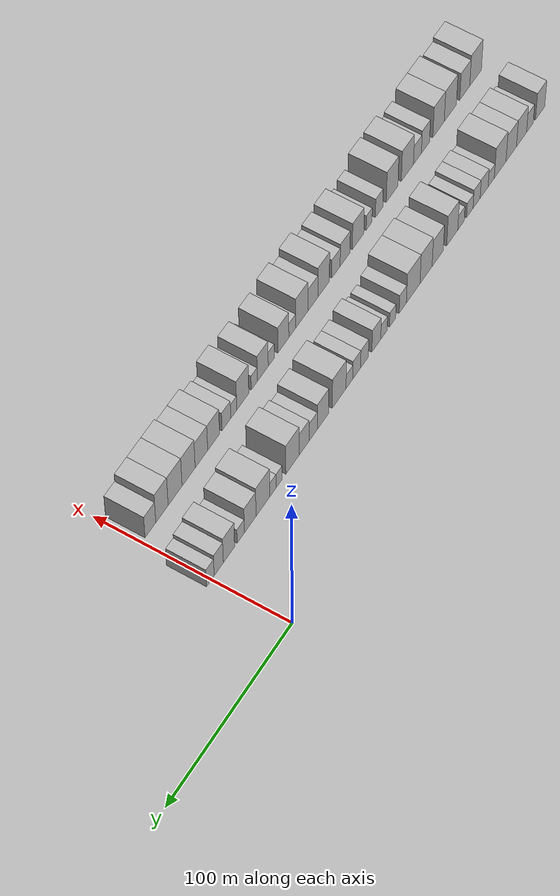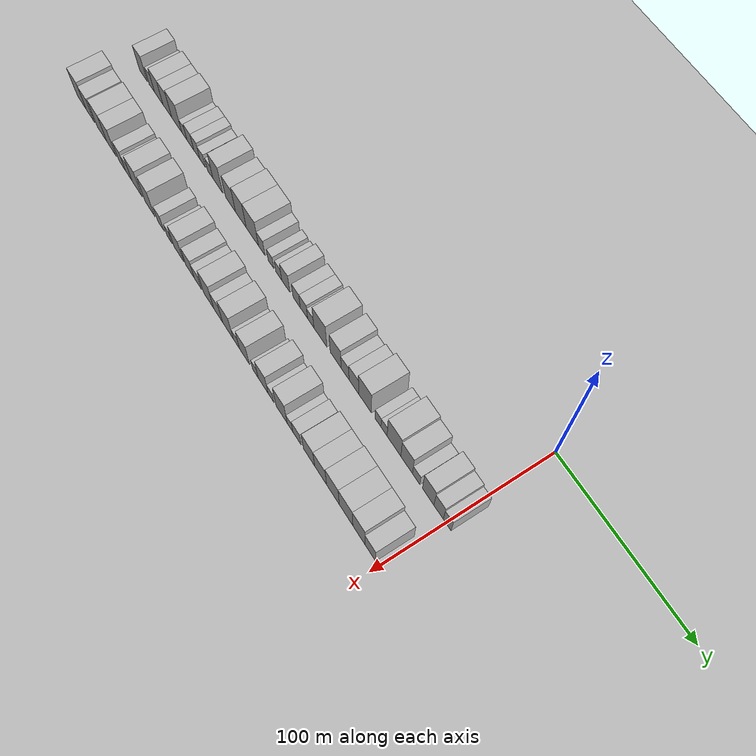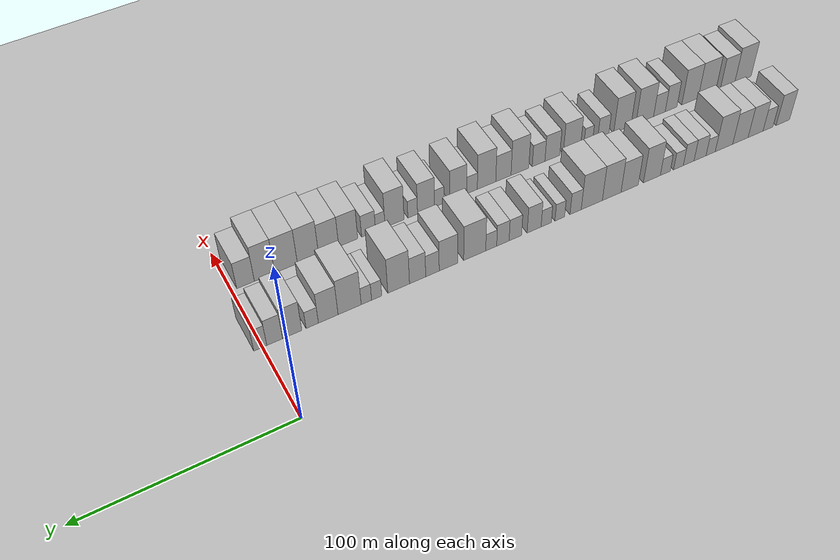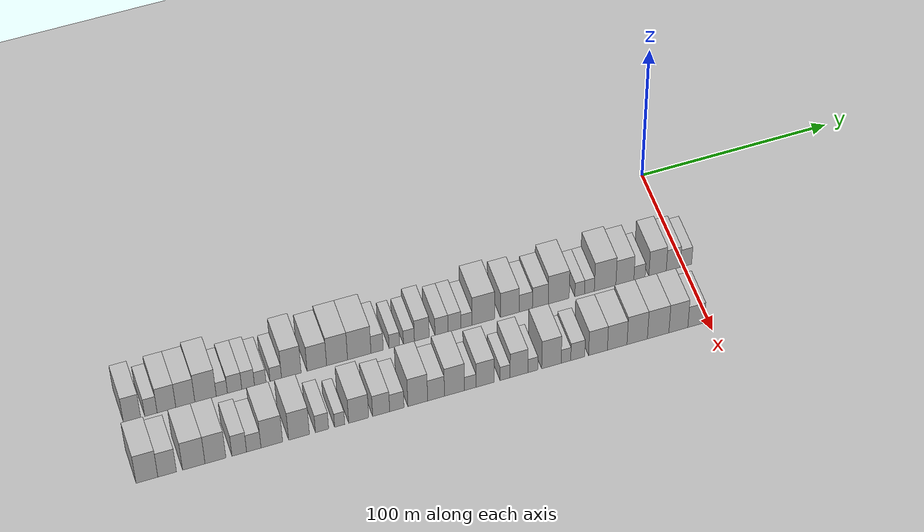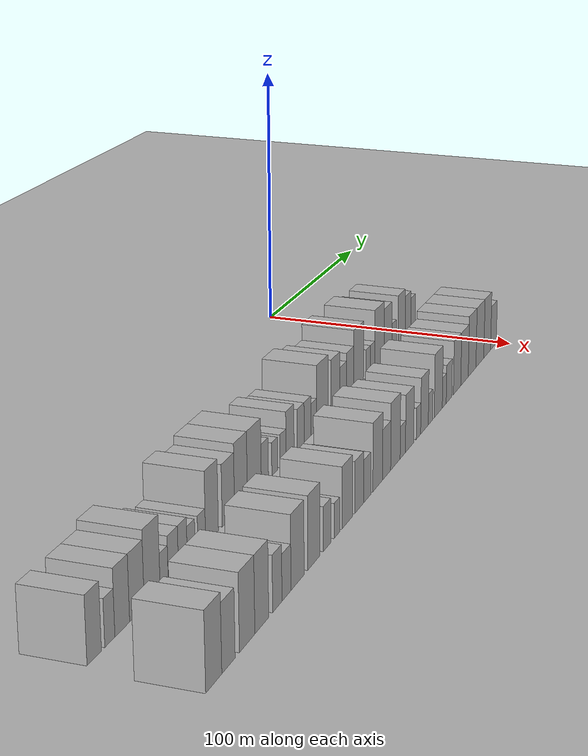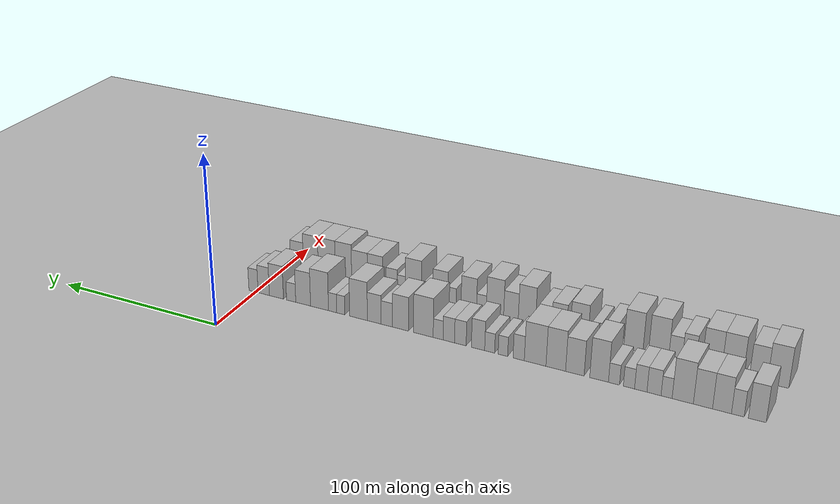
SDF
<sdf version="1.6">
 <world name="default">
  <include><name>ground_plane_1</name><uri>model://HANNAS_ground_plane</uri></include>
  <include>
   <name>ground_plane_2</name>
   <uri>model://HANNAS_ground_plane</uri>
   <pose>100 0 0  0 0 0</pose>
  </include>
  <model name="building_1">
   <static>1</static>
   <pose>50.0000 -282.7054 0 0.000000 0.000000 0.000000</pose>
   <link name="link">
    <pose>0 0 10.50 0 0 0</pose>
    <collision name="collision"><geometry><box><size>20.0000 8.5893 21.0000</size></box></geometry></collision>
    <visual name="visual">
     <cast_shadows>0</cast_shadows>
     <geometry><box><size>20.0000 8.5893 21.0000</size></box></geometry>
     <material>
      <script>
       <uri>model://HANNAS_wall/materials/scripts</uri>
       <uri>model://HANNAS_wall/materials/textures</uri>
       <name>vrc/HANNAS_wall</name>
      </script>
     </material>
    </visual>
   </link>
  </model>
  <model name="building_2">
   <static>1</static>
   <pose>50.0000 -273.3137 0 0.000000 0.000000 0.000000</pose>
   <link name="link">
    <pose>0 0 7.50 0 0 0</pose>
    <collision name="collision"><geometry><box><size>20.0000 6.1940 15.0000</size></box></geometry></collision>
    <visual name="visual">
     <cast_shadows>0</cast_shadows>
     <geometry><box><size>20.0000 6.1940 15.0000</size></box></geometry>
     <material>
      <script>
       <uri>model://HANNAS_wall/materials/scripts</uri>
       <uri>model://HANNAS_wall/materials/textures</uri>
       <name>vrc/HANNAS_wall</name>
      </script>
     </material>
    </visual>
   </link>
  </model>
  <model name="building_3">
   <static>1</static>
   <pose>50.0000 -265.5735 0 0.000000 0.000000 0.000000</pose>
   <link name="link">
    <pose>0 0 10.50 0 0 0</pose>
    <collision name="collision"><geometry><box><size>20.0000 9.2864 21.0000</size></box></geometry></collision>
    <visual name="visual">
     <cast_shadows>0</cast_shadows>
     <geometry><box><size>20.0000 9.2864 21.0000</size></box></geometry>
     <material>
      <script>
       <uri>model://HANNAS_wall/materials/scripts</uri>
       <uri>model://HANNAS_wall/materials/textures</uri>
       <name>vrc/HANNAS_wall</name>
      </script>
     </material>
    </visual>
   </link>
  </model>
  <model name="building_4">
   <static>1</static>
   <pose>50.0000 -256.1749 0 0.000000 0.000000 0.000000</pose>
   <link name="link">
    <pose>0 0 10.50 0 0 0</pose>
    <collision name="collision"><geometry><box><size>20.0000 9.5108 21.0000</size></box></geometry></collision>
    <visual name="visual">
     <cast_shadows>0</cast_shadows>
     <geometry><box><size>20.0000 9.5108 21.0000</size></box></geometry>
     <material>
      <script>
       <uri>model://HANNAS_wall/materials/scripts</uri>
       <uri>model://HANNAS_wall/materials/textures</uri>
       <name>vrc/HANNAS_wall</name>
      </script>
     </material>
    </visual>
   </link>
  </model>
  <model name="building_5">
   <static>1</static>
   <pose>50.0000 -246.0718 0 0.000000 0.000000 0.000000</pose>
   <link name="link">
    <pose>0 0 12.00 0 0 0</pose>
    <collision name="collision"><geometry><box><size>20.0000 10.6954 24.0000</size></box></geometry></collision>
    <visual name="visual">
     <cast_shadows>0</cast_shadows>
     <geometry><box><size>20.0000 10.6954 24.0000</size></box></geometry>
     <material>
      <script>
       <uri>model://HANNAS_wall/materials/scripts</uri>
       <uri>model://HANNAS_wall/materials/textures</uri>
       <name>vrc/HANNAS_wall</name>
      </script>
     </material>
    </visual>
   </link>
  </model>
  <model name="building_6">
   <static>1</static>
   <pose>50.0000 -237.9298 0 0.000000 0.000000 0.000000</pose>
   <link name="link">
    <pose>0 0 6.00 0 0 0</pose>
    <collision name="collision"><geometry><box><size>20.0000 5.5887 12.0000</size></box></geometry></collision>
    <visual name="visual">
     <cast_shadows>0</cast_shadows>
     <geometry><box><size>20.0000 5.5887 12.0000</size></box></geometry>
     <material>
      <script>
       <uri>model://HANNAS_wall/materials/scripts</uri>
       <uri>model://HANNAS_wall/materials/textures</uri>
       <name>vrc/HANNAS_wall</name>
      </script>
     </material>
    </visual>
   </link>
  </model>
  <model name="building_7">
   <static>1</static>
   <pose>50.0000 -231.5289 0 0.000000 0.000000 0.000000</pose>
   <link name="link">
    <pose>0 0 7.50 0 0 0</pose>
    <collision name="collision"><geometry><box><size>20.0000 7.2132 15.0000</size></box></geometry></collision>
    <visual name="visual">
     <cast_shadows>0</cast_shadows>
     <geometry><box><size>20.0000 7.2132 15.0000</size></box></geometry>
     <material>
      <script>
       <uri>model://HANNAS_wall/materials/scripts</uri>
       <uri>model://HANNAS_wall/materials/textures</uri>
       <name>vrc/HANNAS_wall</name>
      </script>
     </material>
    </visual>
   </link>
  </model>
  <model name="building_8">
   <static>1</static>
   <pose>50.0000 -224.7328 0 0.000000 0.000000 0.000000</pose>
   <link name="link">
    <pose>0 0 7.50 0 0 0</pose>
    <collision name="collision"><geometry><box><size>20.0000 6.3789 15.0000</size></box></geometry></collision>
    <visual name="visual">
     <cast_shadows>0</cast_shadows>
     <geometry><box><size>20.0000 6.3789 15.0000</size></box></geometry>
     <material>
      <script>
       <uri>model://HANNAS_wall/materials/scripts</uri>
       <uri>model://HANNAS_wall/materials/textures</uri>
       <name>vrc/HANNAS_wall</name>
      </script>
     </material>
    </visual>
   </link>
  </model>
  <model name="building_9">
   <static>1</static>
   <pose>50.0000 -218.6347 0 0.000000 0.000000 0.000000</pose>
   <link name="link">
    <pose>0 0 6.00 0 0 0</pose>
    <collision name="collision"><geometry><box><size>20.0000 5.8174 12.0000</size></box></geometry></collision>
    <visual name="visual">
     <cast_shadows>0</cast_shadows>
     <geometry><box><size>20.0000 5.8174 12.0000</size></box></geometry>
     <material>
      <script>
       <uri>model://HANNAS_wall/materials/scripts</uri>
       <uri>model://HANNAS_wall/materials/textures</uri>
       <name>vrc/HANNAS_wall</name>
      </script>
     </material>
    </visual>
   </link>
  </model>
  <model name="building_10">
   <static>1</static>
   <pose>50.0000 -210.8293 0 0.000000 0.000000 0.000000</pose>
   <link name="link">
    <pose>0 0 6.00 0 0 0</pose>
    <collision name="collision"><geometry><box><size>20.0000 5.7934 12.0000</size></box></geometry></collision>
    <visual name="visual">
     <cast_shadows>0</cast_shadows>
     <geometry><box><size>20.0000 5.7934 12.0000</size></box></geometry>
     <material>
      <script>
       <uri>model://HANNAS_wall/materials/scripts</uri>
       <uri>model://HANNAS_wall/materials/textures</uri>
       <name>vrc/HANNAS_wall</name>
      </script>
     </material>
    </visual>
   </link>
  </model>
  <model name="building_11">
   <static>1</static>
   <pose>50.0000 -202.9933 0 0.000000 0.000000 0.000000</pose>
   <link name="link">
    <pose>0 0 12.00 0 0 0</pose>
    <collision name="collision"><geometry><box><size>20.0000 9.8786 24.0000</size></box></geometry></collision>
    <visual name="visual">
     <cast_shadows>0</cast_shadows>
     <geometry><box><size>20.0000 9.8786 24.0000</size></box></geometry>
     <material>
      <script>
       <uri>model://HANNAS_wall/materials/scripts</uri>
       <uri>model://HANNAS_wall/materials/textures</uri>
       <name>vrc/HANNAS_wall</name>
      </script>
     </material>
    </visual>
   </link>
  </model>
  <model name="building_12">
   <static>1</static>
   <pose>50.0000 -190.0922 0 0.000000 0.000000 0.000000</pose>
   <link name="link">
    <pose>0 0 10.50 0 0 0</pose>
    <collision name="collision"><geometry><box><size>20.0000 9.9234 21.0000</size></box></geometry></collision>
    <visual name="visual">
     <cast_shadows>0</cast_shadows>
     <geometry><box><size>20.0000 9.9234 21.0000</size></box></geometry>
     <material>
      <script>
       <uri>model://HANNAS_wall/materials/scripts</uri>
       <uri>model://HANNAS_wall/materials/textures</uri>
       <name>vrc/HANNAS_wall</name>
      </script>
     </material>
    </visual>
   </link>
  </model>
  <model name="building_13">
   <static>1</static>
   <pose>50.0000 -179.8102 0 0.000000 0.000000 0.000000</pose>
   <link name="link">
    <pose>0 0 12.00 0 0 0</pose>
    <collision name="collision"><geometry><box><size>20.0000 10.6407 24.0000</size></box></geometry></collision>
    <visual name="visual">
     <cast_shadows>0</cast_shadows>
     <geometry><box><size>20.0000 10.6407 24.0000</size></box></geometry>
     <material>
      <script>
       <uri>model://HANNAS_wall/materials/scripts</uri>
       <uri>model://HANNAS_wall/materials/textures</uri>
       <name>vrc/HANNAS_wall</name>
      </script>
     </material>
    </visual>
   </link>
  </model>
  <model name="building_14">
   <static>1</static>
   <pose>50.0000 -168.5287 0 0.000000 0.000000 0.000000</pose>
   <link name="link">
    <pose>0 0 12.00 0 0 0</pose>
    <collision name="collision"><geometry><box><size>20.0000 11.9223 24.0000</size></box></geometry></collision>
    <visual name="visual">
     <cast_shadows>0</cast_shadows>
     <geometry><box><size>20.0000 11.9223 24.0000</size></box></geometry>
     <material>
      <script>
       <uri>model://HANNAS_wall/materials/scripts</uri>
       <uri>model://HANNAS_wall/materials/textures</uri>
       <name>vrc/HANNAS_wall</name>
      </script>
     </material>
    </visual>
   </link>
  </model>
  <model name="building_15">
   <static>1</static>
   <pose>50.0000 -159.4381 0 0.000000 0.000000 0.000000</pose>
   <link name="link">
    <pose>0 0 7.50 0 0 0</pose>
    <collision name="collision"><geometry><box><size>20.0000 6.2589 15.0000</size></box></geometry></collision>
    <visual name="visual">
     <cast_shadows>0</cast_shadows>
     <geometry><box><size>20.0000 6.2589 15.0000</size></box></geometry>
     <material>
      <script>
       <uri>model://HANNAS_wall/materials/scripts</uri>
       <uri>model://HANNAS_wall/materials/textures</uri>
       <name>vrc/HANNAS_wall</name>
      </script>
     </material>
    </visual>
   </link>
  </model>
  <model name="building_16">
   <static>1</static>
   <pose>50.0000 -150.6454 0 0.000000 0.000000 0.000000</pose>
   <link name="link">
    <pose>0 0 6.00 0 0 0</pose>
    <collision name="collision"><geometry><box><size>20.0000 5.3266 12.0000</size></box></geometry></collision>
    <visual name="visual">
     <cast_shadows>0</cast_shadows>
     <geometry><box><size>20.0000 5.3266 12.0000</size></box></geometry>
     <material>
      <script>
       <uri>model://HANNAS_wall/materials/scripts</uri>
       <uri>model://HANNAS_wall/materials/textures</uri>
       <name>vrc/HANNAS_wall</name>
      </script>
     </material>
    </visual>
   </link>
  </model>
  <model name="building_17">
   <static>1</static>
   <pose>50.0000 -143.1779 0 0.000000 0.000000 0.000000</pose>
   <link name="link">
    <pose>0 0 6.00 0 0 0</pose>
    <collision name="collision"><geometry><box><size>20.0000 5.6084 12.0000</size></box></geometry></collision>
    <visual name="visual">
     <cast_shadows>0</cast_shadows>
     <geometry><box><size>20.0000 5.6084 12.0000</size></box></geometry>
     <material>
      <script>
       <uri>model://HANNAS_wall/materials/scripts</uri>
       <uri>model://HANNAS_wall/materials/textures</uri>
       <name>vrc/HANNAS_wall</name>
      </script>
     </material>
    </visual>
   </link>
  </model>
  <model name="building_18">
   <static>1</static>
   <pose>50.0000 -136.5810 0 0.000000 0.000000 0.000000</pose>
   <link name="link">
    <pose>0 0 9.00 0 0 0</pose>
    <collision name="collision"><geometry><box><size>20.0000 7.5854 18.0000</size></box></geometry></collision>
    <visual name="visual">
     <cast_shadows>0</cast_shadows>
     <geometry><box><size>20.0000 7.5854 18.0000</size></box></geometry>
     <material>
      <script>
       <uri>model://HANNAS_wall/materials/scripts</uri>
       <uri>model://HANNAS_wall/materials/textures</uri>
       <name>vrc/HANNAS_wall</name>
      </script>
     </material>
    </visual>
   </link>
  </model>
  <model name="building_19">
   <static>1</static>
   <pose>50.0000 -126.4418 0 0.000000 0.000000 0.000000</pose>
   <link name="link">
    <pose>0 0 7.50 0 0 0</pose>
    <collision name="collision"><geometry><box><size>20.0000 6.6930 15.0000</size></box></geometry></collision>
    <visual name="visual">
     <cast_shadows>0</cast_shadows>
     <geometry><box><size>20.0000 6.6930 15.0000</size></box></geometry>
     <material>
      <script>
       <uri>model://HANNAS_wall/materials/scripts</uri>
       <uri>model://HANNAS_wall/materials/textures</uri>
       <name>vrc/HANNAS_wall</name>
      </script>
     </material>
    </visual>
   </link>
  </model>
  <model name="building_20">
   <static>1</static>
   <pose>50.0000 -119.7794 0 0.000000 0.000000 0.000000</pose>
   <link name="link">
    <pose>0 0 7.50 0 0 0</pose>
    <collision name="collision"><geometry><box><size>20.0000 6.6319 15.0000</size></box></geometry></collision>
    <visual name="visual">
     <cast_shadows>0</cast_shadows>
     <geometry><box><size>20.0000 6.6319 15.0000</size></box></geometry>
     <material>
      <script>
       <uri>model://HANNAS_wall/materials/scripts</uri>
       <uri>model://HANNAS_wall/materials/textures</uri>
       <name>vrc/HANNAS_wall</name>
      </script>
     </material>
    </visual>
   </link>
  </model>
  <model name="building_21">
   <static>1</static>
   <pose>50.0000 -113.5627 0 0.000000 0.000000 0.000000</pose>
   <link name="link">
    <pose>0 0 6.00 0 0 0</pose>
    <collision name="collision"><geometry><box><size>20.0000 5.8016 12.0000</size></box></geometry></collision>
    <visual name="visual">
     <cast_shadows>0</cast_shadows>
     <geometry><box><size>20.0000 5.8016 12.0000</size></box></geometry>
     <material>
      <script>
       <uri>model://HANNAS_wall/materials/scripts</uri>
       <uri>model://HANNAS_wall/materials/textures</uri>
       <name>vrc/HANNAS_wall</name>
      </script>
     </material>
    </visual>
   </link>
  </model>
  <model name="building_22">
   <static>1</static>
   <pose>50.0000 -104.8681 0 0.000000 0.000000 0.000000</pose>
   <link name="link">
    <pose>0 0 12.00 0 0 0</pose>
    <collision name="collision"><geometry><box><size>20.0000 11.5875 24.0000</size></box></geometry></collision>
    <visual name="visual">
     <cast_shadows>0</cast_shadows>
     <geometry><box><size>20.0000 11.5875 24.0000</size></box></geometry>
     <material>
      <script>
       <uri>model://HANNAS_wall/materials/scripts</uri>
       <uri>model://HANNAS_wall/materials/textures</uri>
       <name>vrc/HANNAS_wall</name>
      </script>
     </material>
    </visual>
   </link>
  </model>
  <model name="building_23">
   <static>1</static>
   <pose>50.0000 -91.2402 0 0.000000 0.000000 0.000000</pose>
   <link name="link">
    <pose>0 0 10.50 0 0 0</pose>
    <collision name="collision"><geometry><box><size>20.0000 9.6684 21.0000</size></box></geometry></collision>
    <visual name="visual">
     <cast_shadows>0</cast_shadows>
     <geometry><box><size>20.0000 9.6684 21.0000</size></box></geometry>
     <material>
      <script>
       <uri>model://HANNAS_wall/materials/scripts</uri>
       <uri>model://HANNAS_wall/materials/textures</uri>
       <name>vrc/HANNAS_wall</name>
      </script>
     </material>
    </visual>
   </link>
  </model>
  <model name="building_24">
   <static>1</static>
   <pose>50.0000 -82.9417 0 0.000000 0.000000 0.000000</pose>
   <link name="link">
    <pose>0 0 7.50 0 0 0</pose>
    <collision name="collision"><geometry><box><size>20.0000 6.9285 15.0000</size></box></geometry></collision>
    <visual name="visual">
     <cast_shadows>0</cast_shadows>
     <geometry><box><size>20.0000 6.9285 15.0000</size></box></geometry>
     <material>
      <script>
       <uri>model://HANNAS_wall/materials/scripts</uri>
       <uri>model://HANNAS_wall/materials/textures</uri>
       <name>vrc/HANNAS_wall</name>
      </script>
     </material>
    </visual>
   </link>
  </model>
  <model name="building_25">
   <static>1</static>
   <pose>50.0000 -75.3658 0 0.000000 0.000000 0.000000</pose>
   <link name="link">
    <pose>0 0 9.00 0 0 0</pose>
    <collision name="collision"><geometry><box><size>20.0000 8.2234 18.0000</size></box></geometry></collision>
    <visual name="visual">
     <cast_shadows>0</cast_shadows>
     <geometry><box><size>20.0000 8.2234 18.0000</size></box></geometry>
     <material>
      <script>
       <uri>model://HANNAS_wall/materials/scripts</uri>
       <uri>model://HANNAS_wall/materials/textures</uri>
       <name>vrc/HANNAS_wall</name>
      </script>
     </material>
    </visual>
   </link>
  </model>
  <model name="building_26">
   <static>1</static>
   <pose>50.0000 -65.8035 0 0.000000 0.000000 0.000000</pose>
   <link name="link">
    <pose>0 0 12.00 0 0 0</pose>
    <collision name="collision"><geometry><box><size>20.0000 10.9014 24.0000</size></box></geometry></collision>
    <visual name="visual">
     <cast_shadows>0</cast_shadows>
     <geometry><box><size>20.0000 10.9014 24.0000</size></box></geometry>
     <material>
      <script>
       <uri>model://HANNAS_wall/materials/scripts</uri>
       <uri>model://HANNAS_wall/materials/textures</uri>
       <name>vrc/HANNAS_wall</name>
      </script>
     </material>
    </visual>
   </link>
  </model>
  <model name="building_27">
   <static>1</static>
   <pose>50.0000 -54.8230 0 0.000000 0.000000 0.000000</pose>
   <link name="link">
    <pose>0 0 6.00 0 0 0</pose>
    <collision name="collision"><geometry><box><size>20.0000 5.0596 12.0000</size></box></geometry></collision>
    <visual name="visual">
     <cast_shadows>0</cast_shadows>
     <geometry><box><size>20.0000 5.0596 12.0000</size></box></geometry>
     <material>
      <script>
       <uri>model://HANNAS_wall/materials/scripts</uri>
       <uri>model://HANNAS_wall/materials/textures</uri>
       <name>vrc/HANNAS_wall</name>
      </script>
     </material>
    </visual>
   </link>
  </model>
  <model name="building_28">
   <static>1</static>
   <pose>50.0000 -49.7295 0 0.000000 0.000000 0.000000</pose>
   <link name="link">
    <pose>0 0 6.00 0 0 0</pose>
    <collision name="collision"><geometry><box><size>20.0000 5.1273 12.0000</size></box></geometry></collision>
    <visual name="visual">
     <cast_shadows>0</cast_shadows>
     <geometry><box><size>20.0000 5.1273 12.0000</size></box></geometry>
     <material>
      <script>
       <uri>model://HANNAS_wall/materials/scripts</uri>
       <uri>model://HANNAS_wall/materials/textures</uri>
       <name>vrc/HANNAS_wall</name>
      </script>
     </material>
    </visual>
   </link>
  </model>
  <model name="building_29">
   <static>1</static>
   <pose>50.0000 -41.5138 0 0.000000 0.000000 0.000000</pose>
   <link name="link">
    <pose>0 0 12.00 0 0 0</pose>
    <collision name="collision"><geometry><box><size>20.0000 11.3039 24.0000</size></box></geometry></collision>
    <visual name="visual">
     <cast_shadows>0</cast_shadows>
     <geometry><box><size>20.0000 11.3039 24.0000</size></box></geometry>
     <material>
      <script>
       <uri>model://HANNAS_wall/materials/scripts</uri>
       <uri>model://HANNAS_wall/materials/textures</uri>
       <name>vrc/HANNAS_wall</name>
      </script>
     </material>
    </visual>
   </link>
  </model>
  <model name="building_30">
   <static>1</static>
   <pose>50.0000 -31.1243 0 0.000000 0.000000 0.000000</pose>
   <link name="link">
    <pose>0 0 10.50 0 0 0</pose>
    <collision name="collision"><geometry><box><size>20.0000 9.4751 21.0000</size></box></geometry></collision>
    <visual name="visual">
     <cast_shadows>0</cast_shadows>
     <geometry><box><size>20.0000 9.4751 21.0000</size></box></geometry>
     <material>
      <script>
       <uri>model://HANNAS_wall/materials/scripts</uri>
       <uri>model://HANNAS_wall/materials/textures</uri>
       <name>vrc/HANNAS_wall</name>
      </script>
     </material>
    </visual>
   </link>
  </model>
  <model name="building_31">
   <static>1</static>
   <pose>50.0000 -23.4259 0 0.000000 0.000000 0.000000</pose>
   <link name="link">
    <pose>0 0 6.00 0 0 0</pose>
    <collision name="collision"><geometry><box><size>20.0000 5.9219 12.0000</size></box></geometry></collision>
    <visual name="visual">
     <cast_shadows>0</cast_shadows>
     <geometry><box><size>20.0000 5.9219 12.0000</size></box></geometry>
     <material>
      <script>
       <uri>model://HANNAS_wall/materials/scripts</uri>
       <uri>model://HANNAS_wall/materials/textures</uri>
       <name>vrc/HANNAS_wall</name>
      </script>
     </material>
    </visual>
   </link>
  </model>
  <model name="building_32">
   <static>1</static>
   <pose>50.0000 -13.8963 0 0.000000 0.000000 0.000000</pose>
   <link name="link">
    <pose>0 0 10.50 0 0 0</pose>
    <collision name="collision"><geometry><box><size>20.0000 9.1371 21.0000</size></box></geometry></collision>
    <visual name="visual">
     <cast_shadows>0</cast_shadows>
     <geometry><box><size>20.0000 9.1371 21.0000</size></box></geometry>
     <material>
      <script>
       <uri>model://HANNAS_wall/materials/scripts</uri>
       <uri>model://HANNAS_wall/materials/textures</uri>
       <name>vrc/HANNAS_wall</name>
      </script>
     </material>
    </visual>
   </link>
  </model>
  <model name="building_33">
   <static>1</static>
   <pose>50.0000 -5.6347 0 0.000000 0.000000 0.000000</pose>
   <link name="link">
    <pose>0 0 9.00 0 0 0</pose>
    <collision name="collision"><geometry><box><size>20.0000 7.3862 18.0000</size></box></geometry></collision>
    <visual name="visual">
     <cast_shadows>0</cast_shadows>
     <geometry><box><size>20.0000 7.3862 18.0000</size></box></geometry>
     <material>
      <script>
       <uri>model://HANNAS_wall/materials/scripts</uri>
       <uri>model://HANNAS_wall/materials/textures</uri>
       <name>vrc/HANNAS_wall</name>
      </script>
     </material>
    </visual>
   </link>
  </model>
  <model name="building_34">
   <static>1</static>
   <pose>50.0000 1.0851 0 0.000000 0.000000 0.000000</pose>
   <link name="link">
    <pose>0 0 7.50 0 0 0</pose>
    <collision name="collision"><geometry><box><size>20.0000 6.0533 15.0000</size></box></geometry></collision>
    <visual name="visual">
     <cast_shadows>0</cast_shadows>
     <geometry><box><size>20.0000 6.0533 15.0000</size></box></geometry>
     <material>
      <script>
       <uri>model://HANNAS_wall/materials/scripts</uri>
       <uri>model://HANNAS_wall/materials/textures</uri>
       <name>vrc/HANNAS_wall</name>
      </script>
     </material>
    </visual>
   </link>
  </model>
  <model name="building_67">
   <static>1</static>
   <pose>85.0000 -284.6510 0 0.000000 0.000000 0.000000</pose>
   <link name="link">
    <pose>0 0 12.00 0 0 0</pose>
    <collision name="collision"><geometry><box><size>20.0000 10.6979 24.0000</size></box></geometry></collision>
    <visual name="visual">
     <cast_shadows>0</cast_shadows>
     <geometry><box><size>20.0000 10.6979 24.0000</size></box></geometry>
     <material>
      <script>
       <uri>model://HANNAS_wall/materials/scripts</uri>
       <uri>model://HANNAS_wall/materials/textures</uri>
       <name>vrc/HANNAS_wall</name>
      </script>
     </material>
    </visual>
   </link>
  </model>
  <model name="building_68">
   <static>1</static>
   <pose>85.0000 -274.7380 0 0.000000 0.000000 0.000000</pose>
   <link name="link">
    <pose>0 0 10.50 0 0 0</pose>
    <collision name="collision"><geometry><box><size>20.0000 9.1280 21.0000</size></box></geometry></collision>
    <visual name="visual">
     <cast_shadows>0</cast_shadows>
     <geometry><box><size>20.0000 9.1280 21.0000</size></box></geometry>
     <material>
      <script>
       <uri>model://HANNAS_wall/materials/scripts</uri>
       <uri>model://HANNAS_wall/materials/textures</uri>
       <name>vrc/HANNAS_wall</name>
      </script>
     </material>
    </visual>
   </link>
  </model>
  <model name="building_69">
   <static>1</static>
   <pose>85.0000 -261.6400 0 0.000000 0.000000 0.000000</pose>
   <link name="link">
    <pose>0 0 12.00 0 0 0</pose>
    <collision name="collision"><geometry><box><size>20.0000 11.0681 24.0000</size></box></geometry></collision>
    <visual name="visual">
     <cast_shadows>0</cast_shadows>
     <geometry><box><size>20.0000 11.0681 24.0000</size></box></geometry>
     <material>
      <script>
       <uri>model://HANNAS_wall/materials/scripts</uri>
       <uri>model://HANNAS_wall/materials/textures</uri>
       <name>vrc/HANNAS_wall</name>
      </script>
     </material>
    </visual>
   </link>
  </model>
  <model name="building_70">
   <static>1</static>
   <pose>85.0000 -250.9583 0 0.000000 0.000000 0.000000</pose>
   <link name="link">
    <pose>0 0 12.00 0 0 0</pose>
    <collision name="collision"><geometry><box><size>20.0000 10.2953 24.0000</size></box></geometry></collision>
    <visual name="visual">
     <cast_shadows>0</cast_shadows>
     <geometry><box><size>20.0000 10.2953 24.0000</size></box></geometry>
     <material>
      <script>
       <uri>model://HANNAS_wall/materials/scripts</uri>
       <uri>model://HANNAS_wall/materials/textures</uri>
       <name>vrc/HANNAS_wall</name>
      </script>
     </material>
    </visual>
   </link>
  </model>
  <model name="building_71">
   <static>1</static>
   <pose>85.0000 -239.1912 0 0.000000 0.000000 0.000000</pose>
   <link name="link">
    <pose>0 0 9.00 0 0 0</pose>
    <collision name="collision"><geometry><box><size>20.0000 7.2389 18.0000</size></box></geometry></collision>
    <visual name="visual">
     <cast_shadows>0</cast_shadows>
     <geometry><box><size>20.0000 7.2389 18.0000</size></box></geometry>
     <material>
      <script>
       <uri>model://HANNAS_wall/materials/scripts</uri>
       <uri>model://HANNAS_wall/materials/textures</uri>
       <name>vrc/HANNAS_wall</name>
      </script>
     </material>
    </visual>
   </link>
  </model>
  <model name="building_72">
   <static>1</static>
   <pose>85.0000 -231.9990 0 0.000000 0.000000 0.000000</pose>
   <link name="link">
    <pose>0 0 7.50 0 0 0</pose>
    <collision name="collision"><geometry><box><size>20.0000 7.1454 15.0000</size></box></geometry></collision>
    <visual name="visual">
     <cast_shadows>0</cast_shadows>
     <geometry><box><size>20.0000 7.1454 15.0000</size></box></geometry>
     <material>
      <script>
       <uri>model://HANNAS_wall/materials/scripts</uri>
       <uri>model://HANNAS_wall/materials/textures</uri>
       <name>vrc/HANNAS_wall</name>
      </script>
     </material>
    </visual>
   </link>
  </model>
  <model name="building_73">
   <static>1</static>
   <pose>85.0000 -223.0458 0 0.000000 0.000000 0.000000</pose>
   <link name="link">
    <pose>0 0 12.00 0 0 0</pose>
    <collision name="collision"><geometry><box><size>20.0000 10.7611 24.0000</size></box></geometry></collision>
    <visual name="visual">
     <cast_shadows>0</cast_shadows>
     <geometry><box><size>20.0000 10.7611 24.0000</size></box></geometry>
     <material>
      <script>
       <uri>model://HANNAS_wall/materials/scripts</uri>
       <uri>model://HANNAS_wall/materials/textures</uri>
       <name>vrc/HANNAS_wall</name>
      </script>
     </material>
    </visual>
   </link>
  </model>
  <model name="building_74">
   <static>1</static>
   <pose>85.0000 -209.4901 0 0.000000 0.000000 0.000000</pose>
   <link name="link">
    <pose>0 0 12.00 0 0 0</pose>
    <collision name="collision"><geometry><box><size>20.0000 10.3504 24.0000</size></box></geometry></collision>
    <visual name="visual">
     <cast_shadows>0</cast_shadows>
     <geometry><box><size>20.0000 10.3504 24.0000</size></box></geometry>
     <material>
      <script>
       <uri>model://HANNAS_wall/materials/scripts</uri>
       <uri>model://HANNAS_wall/materials/textures</uri>
       <name>vrc/HANNAS_wall</name>
      </script>
     </material>
    </visual>
   </link>
  </model>
  <model name="building_75">
   <static>1</static>
   <pose>85.0000 -198.0208 0 0.000000 0.000000 0.000000</pose>
   <link name="link">
    <pose>0 0 7.50 0 0 0</pose>
    <collision name="collision"><geometry><box><size>20.0000 6.5882 15.0000</size></box></geometry></collision>
    <visual name="visual">
     <cast_shadows>0</cast_shadows>
     <geometry><box><size>20.0000 6.5882 15.0000</size></box></geometry>
     <material>
      <script>
       <uri>model://HANNAS_wall/materials/scripts</uri>
       <uri>model://HANNAS_wall/materials/textures</uri>
       <name>vrc/HANNAS_wall</name>
      </script>
     </material>
    </visual>
   </link>
  </model>
  <model name="building_76">
   <static>1</static>
   <pose>85.0000 -189.1883 0 0.000000 0.000000 0.000000</pose>
   <link name="link">
    <pose>0 0 6.00 0 0 0</pose>
    <collision name="collision"><geometry><box><size>20.0000 5.0768 12.0000</size></box></geometry></collision>
    <visual name="visual">
     <cast_shadows>0</cast_shadows>
     <geometry><box><size>20.0000 5.0768 12.0000</size></box></geometry>
     <material>
      <script>
       <uri>model://HANNAS_wall/materials/scripts</uri>
       <uri>model://HANNAS_wall/materials/textures</uri>
       <name>vrc/HANNAS_wall</name>
      </script>
     </material>
    </visual>
   </link>
  </model>
  <model name="building_77">
   <static>1</static>
   <pose>85.0000 -179.6312 0 0.000000 0.000000 0.000000</pose>
   <link name="link">
    <pose>0 0 10.50 0 0 0</pose>
    <collision name="collision"><geometry><box><size>20.0000 10.0374 21.0000</size></box></geometry></collision>
    <visual name="visual">
     <cast_shadows>0</cast_shadows>
     <geometry><box><size>20.0000 10.0374 21.0000</size></box></geometry>
     <material>
      <script>
       <uri>model://HANNAS_wall/materials/scripts</uri>
       <uri>model://HANNAS_wall/materials/textures</uri>
       <name>vrc/HANNAS_wall</name>
      </script>
     </material>
    </visual>
   </link>
  </model>
  <model name="building_78">
   <static>1</static>
   <pose>85.0000 -168.3327 0 0.000000 0.000000 0.000000</pose>
   <link name="link">
    <pose>0 0 9.00 0 0 0</pose>
    <collision name="collision"><geometry><box><size>20.0000 8.5597 18.0000</size></box></geometry></collision>
    <visual name="visual">
     <cast_shadows>0</cast_shadows>
     <geometry><box><size>20.0000 8.5597 18.0000</size></box></geometry>
     <material>
      <script>
       <uri>model://HANNAS_wall/materials/scripts</uri>
       <uri>model://HANNAS_wall/materials/textures</uri>
       <name>vrc/HANNAS_wall</name>
      </script>
     </material>
    </visual>
   </link>
  </model>
  <model name="building_79">
   <static>1</static>
   <pose>85.0000 -160.4496 0 0.000000 0.000000 0.000000</pose>
   <link name="link">
    <pose>0 0 7.50 0 0 0</pose>
    <collision name="collision"><geometry><box><size>20.0000 7.2064 15.0000</size></box></geometry></collision>
    <visual name="visual">
     <cast_shadows>0</cast_shadows>
     <geometry><box><size>20.0000 7.2064 15.0000</size></box></geometry>
     <material>
      <script>
       <uri>model://HANNAS_wall/materials/scripts</uri>
       <uri>model://HANNAS_wall/materials/textures</uri>
       <name>vrc/HANNAS_wall</name>
      </script>
     </material>
    </visual>
   </link>
  </model>
  <model name="building_80">
   <static>1</static>
   <pose>85.0000 -149.8547 0 0.000000 0.000000 0.000000</pose>
   <link name="link">
    <pose>0 0 12.00 0 0 0</pose>
    <collision name="collision"><geometry><box><size>20.0000 9.9834 24.0000</size></box></geometry></collision>
    <visual name="visual">
     <cast_shadows>0</cast_shadows>
     <geometry><box><size>20.0000 9.9834 24.0000</size></box></geometry>
     <material>
      <script>
       <uri>model://HANNAS_wall/materials/scripts</uri>
       <uri>model://HANNAS_wall/materials/textures</uri>
       <name>vrc/HANNAS_wall</name>
      </script>
     </material>
    </visual>
   </link>
  </model>
  <model name="building_81">
   <static>1</static>
   <pose>85.0000 -140.5931 0 0.000000 0.000000 0.000000</pose>
   <link name="link">
    <pose>0 0 9.00 0 0 0</pose>
    <collision name="collision"><geometry><box><size>20.0000 8.5397 18.0000</size></box></geometry></collision>
    <visual name="visual">
     <cast_shadows>0</cast_shadows>
     <geometry><box><size>20.0000 8.5397 18.0000</size></box></geometry>
     <material>
      <script>
       <uri>model://HANNAS_wall/materials/scripts</uri>
       <uri>model://HANNAS_wall/materials/textures</uri>
       <name>vrc/HANNAS_wall</name>
      </script>
     </material>
    </visual>
   </link>
  </model>
  <model name="building_82">
   <static>1</static>
   <pose>85.0000 -131.2255 0 0.000000 0.000000 0.000000</pose>
   <link name="link">
    <pose>0 0 12.00 0 0 0</pose>
    <collision name="collision"><geometry><box><size>20.0000 10.1955 24.0000</size></box></geometry></collision>
    <visual name="visual">
     <cast_shadows>0</cast_shadows>
     <geometry><box><size>20.0000 10.1955 24.0000</size></box></geometry>
     <material>
      <script>
       <uri>model://HANNAS_wall/materials/scripts</uri>
       <uri>model://HANNAS_wall/materials/textures</uri>
       <name>vrc/HANNAS_wall</name>
      </script>
     </material>
    </visual>
   </link>
  </model>
  <model name="building_83">
   <static>1</static>
   <pose>85.0000 -123.2018 0 0.000000 0.000000 0.000000</pose>
   <link name="link">
    <pose>0 0 6.00 0 0 0</pose>
    <collision name="collision"><geometry><box><size>20.0000 5.8518 12.0000</size></box></geometry></collision>
    <visual name="visual">
     <cast_shadows>0</cast_shadows>
     <geometry><box><size>20.0000 5.8518 12.0000</size></box></geometry>
     <material>
      <script>
       <uri>model://HANNAS_wall/materials/scripts</uri>
       <uri>model://HANNAS_wall/materials/textures</uri>
       <name>vrc/HANNAS_wall</name>
      </script>
     </material>
    </visual>
   </link>
  </model>
  <model name="building_84">
   <static>1</static>
   <pose>85.0000 -115.6385 0 0.000000 0.000000 0.000000</pose>
   <link name="link">
    <pose>0 0 10.50 0 0 0</pose>
    <collision name="collision"><geometry><box><size>20.0000 9.2748 21.0000</size></box></geometry></collision>
    <visual name="visual">
     <cast_shadows>0</cast_shadows>
     <geometry><box><size>20.0000 9.2748 21.0000</size></box></geometry>
     <material>
      <script>
       <uri>model://HANNAS_wall/materials/scripts</uri>
       <uri>model://HANNAS_wall/materials/textures</uri>
       <name>vrc/HANNAS_wall</name>
      </script>
     </material>
    </visual>
   </link>
  </model>
  <model name="building_85">
   <static>1</static>
   <pose>85.0000 -105.4571 0 0.000000 0.000000 0.000000</pose>
   <link name="link">
    <pose>0 0 6.00 0 0 0</pose>
    <collision name="collision"><geometry><box><size>20.0000 5.0880 12.0000</size></box></geometry></collision>
    <visual name="visual">
     <cast_shadows>0</cast_shadows>
     <geometry><box><size>20.0000 5.0880 12.0000</size></box></geometry>
     <material>
      <script>
       <uri>model://HANNAS_wall/materials/scripts</uri>
       <uri>model://HANNAS_wall/materials/textures</uri>
       <name>vrc/HANNAS_wall</name>
      </script>
     </material>
    </visual>
   </link>
  </model>
  <model name="building_86">
   <static>1</static>
   <pose>85.0000 -98.3718 0 0.000000 0.000000 0.000000</pose>
   <link name="link">
    <pose>0 0 10.50 0 0 0</pose>
    <collision name="collision"><geometry><box><size>20.0000 9.0826 21.0000</size></box></geometry></collision>
    <visual name="visual">
     <cast_shadows>0</cast_shadows>
     <geometry><box><size>20.0000 9.0826 21.0000</size></box></geometry>
     <material>
      <script>
       <uri>model://HANNAS_wall/materials/scripts</uri>
       <uri>model://HANNAS_wall/materials/textures</uri>
       <name>vrc/HANNAS_wall</name>
      </script>
     </material>
    </visual>
   </link>
  </model>
  <model name="building_87">
   <static>1</static>
   <pose>85.0000 -91.2736 0 0.000000 0.000000 0.000000</pose>
   <link name="link">
    <pose>0 0 6.00 0 0 0</pose>
    <collision name="collision"><geometry><box><size>20.0000 5.1139 12.0000</size></box></geometry></collision>
    <visual name="visual">
     <cast_shadows>0</cast_shadows>
     <geometry><box><size>20.0000 5.1139 12.0000</size></box></geometry>
     <material>
      <script>
       <uri>model://HANNAS_wall/materials/scripts</uri>
       <uri>model://HANNAS_wall/materials/textures</uri>
       <name>vrc/HANNAS_wall</name>
      </script>
     </material>
    </visual>
   </link>
  </model>
  <model name="building_88">
   <static>1</static>
   <pose>85.0000 -81.7147 0 0.000000 0.000000 0.000000</pose>
   <link name="link">
    <pose>0 0 12.00 0 0 0</pose>
    <collision name="collision"><geometry><box><size>20.0000 10.0039 24.0000</size></box></geometry></collision>
    <visual name="visual">
     <cast_shadows>0</cast_shadows>
     <geometry><box><size>20.0000 10.0039 24.0000</size></box></geometry>
     <material>
      <script>
       <uri>model://HANNAS_wall/materials/scripts</uri>
       <uri>model://HANNAS_wall/materials/textures</uri>
       <name>vrc/HANNAS_wall</name>
      </script>
     </material>
    </visual>
   </link>
  </model>
  <model name="building_89">
   <static>1</static>
   <pose>85.0000 -74.2543 0 0.000000 0.000000 0.000000</pose>
   <link name="link">
    <pose>0 0 6.00 0 0 0</pose>
    <collision name="collision"><geometry><box><size>20.0000 4.9169 12.0000</size></box></geometry></collision>
    <visual name="visual">
     <cast_shadows>0</cast_shadows>
     <geometry><box><size>20.0000 4.9169 12.0000</size></box></geometry>
     <material>
      <script>
       <uri>model://HANNAS_wall/materials/scripts</uri>
       <uri>model://HANNAS_wall/materials/textures</uri>
       <name>vrc/HANNAS_wall</name>
      </script>
     </material>
    </visual>
   </link>
  </model>
  <model name="building_90">
   <static>1</static>
   <pose>85.0000 -68.1933 0 0.000000 0.000000 0.000000</pose>
   <link name="link">
    <pose>0 0 7.50 0 0 0</pose>
    <collision name="collision"><geometry><box><size>20.0000 7.2050 15.0000</size></box></geometry></collision>
    <visual name="visual">
     <cast_shadows>0</cast_shadows>
     <geometry><box><size>20.0000 7.2050 15.0000</size></box></geometry>
     <material>
      <script>
       <uri>model://HANNAS_wall/materials/scripts</uri>
       <uri>model://HANNAS_wall/materials/textures</uri>
       <name>vrc/HANNAS_wall</name>
      </script>
     </material>
    </visual>
   </link>
  </model>
  <model name="building_91">
   <static>1</static>
   <pose>85.0000 -57.7313 0 0.000000 0.000000 0.000000</pose>
   <link name="link">
    <pose>0 0 10.50 0 0 0</pose>
    <collision name="collision"><geometry><box><size>20.0000 9.7191 21.0000</size></box></geometry></collision>
    <visual name="visual">
     <cast_shadows>0</cast_shadows>
     <geometry><box><size>20.0000 9.7191 21.0000</size></box></geometry>
     <material>
      <script>
       <uri>model://HANNAS_wall/materials/scripts</uri>
       <uri>model://HANNAS_wall/materials/textures</uri>
       <name>vrc/HANNAS_wall</name>
      </script>
     </material>
    </visual>
   </link>
  </model>
  <model name="building_92">
   <static>1</static>
   <pose>85.0000 -47.7907 0 0.000000 0.000000 0.000000</pose>
   <link name="link">
    <pose>0 0 10.50 0 0 0</pose>
    <collision name="collision"><geometry><box><size>20.0000 10.1620 21.0000</size></box></geometry></collision>
    <visual name="visual">
     <cast_shadows>0</cast_shadows>
     <geometry><box><size>20.0000 10.1620 21.0000</size></box></geometry>
     <material>
      <script>
       <uri>model://HANNAS_wall/materials/scripts</uri>
       <uri>model://HANNAS_wall/materials/textures</uri>
       <name>vrc/HANNAS_wall</name>
      </script>
     </material>
    </visual>
   </link>
  </model>
  <model name="building_93">
   <static>1</static>
   <pose>85.0000 -37.4093 0 0.000000 0.000000 0.000000</pose>
   <link name="link">
    <pose>0 0 12.00 0 0 0</pose>
    <collision name="collision"><geometry><box><size>20.0000 10.6009 24.0000</size></box></geometry></collision>
    <visual name="visual">
     <cast_shadows>0</cast_shadows>
     <geometry><box><size>20.0000 10.6009 24.0000</size></box></geometry>
     <material>
      <script>
       <uri>model://HANNAS_wall/materials/scripts</uri>
       <uri>model://HANNAS_wall/materials/textures</uri>
       <name>vrc/HANNAS_wall</name>
      </script>
     </material>
    </visual>
   </link>
  </model>
  <model name="building_94">
   <static>1</static>
   <pose>85.0000 -26.5102 0 0.000000 0.000000 0.000000</pose>
   <link name="link">
    <pose>0 0 12.00 0 0 0</pose>
    <collision name="collision"><geometry><box><size>20.0000 11.1972 24.0000</size></box></geometry></collision>
    <visual name="visual">
     <cast_shadows>0</cast_shadows>
     <geometry><box><size>20.0000 11.1972 24.0000</size></box></geometry>
     <material>
      <script>
       <uri>model://HANNAS_wall/materials/scripts</uri>
       <uri>model://HANNAS_wall/materials/textures</uri>
       <name>vrc/HANNAS_wall</name>
      </script>
     </material>
    </visual>
   </link>
  </model>
  <model name="building_95">
   <static>1</static>
   <pose>85.0000 -15.9694 0 0.000000 0.000000 0.000000</pose>
   <link name="link">
    <pose>0 0 12.00 0 0 0</pose>
    <collision name="collision"><geometry><box><size>20.0000 9.8844 24.0000</size></box></geometry></collision>
    <visual name="visual">
     <cast_shadows>0</cast_shadows>
     <geometry><box><size>20.0000 9.8844 24.0000</size></box></geometry>
     <material>
      <script>
       <uri>model://HANNAS_wall/materials/scripts</uri>
       <uri>model://HANNAS_wall/materials/textures</uri>
       <name>vrc/HANNAS_wall</name>
      </script>
     </material>
    </visual>
   </link>
  </model>
  <model name="building_96">
   <static>1</static>
   <pose>85.0000 -6.7390 0 0.000000 0.000000 0.000000</pose>
   <link name="link">
    <pose>0 0 9.00 0 0 0</pose>
    <collision name="collision"><geometry><box><size>20.0000 8.5765 18.0000</size></box></geometry></collision>
    <visual name="visual">
     <cast_shadows>0</cast_shadows>
     <geometry><box><size>20.0000 8.5765 18.0000</size></box></geometry>
     <material>
      <script>
       <uri>model://HANNAS_wall/materials/scripts</uri>
       <uri>model://HANNAS_wall/materials/textures</uri>
       <name>vrc/HANNAS_wall</name>
      </script>
     </material>
    </visual>
   </link>
  </model>
 </world>
</sdf>
